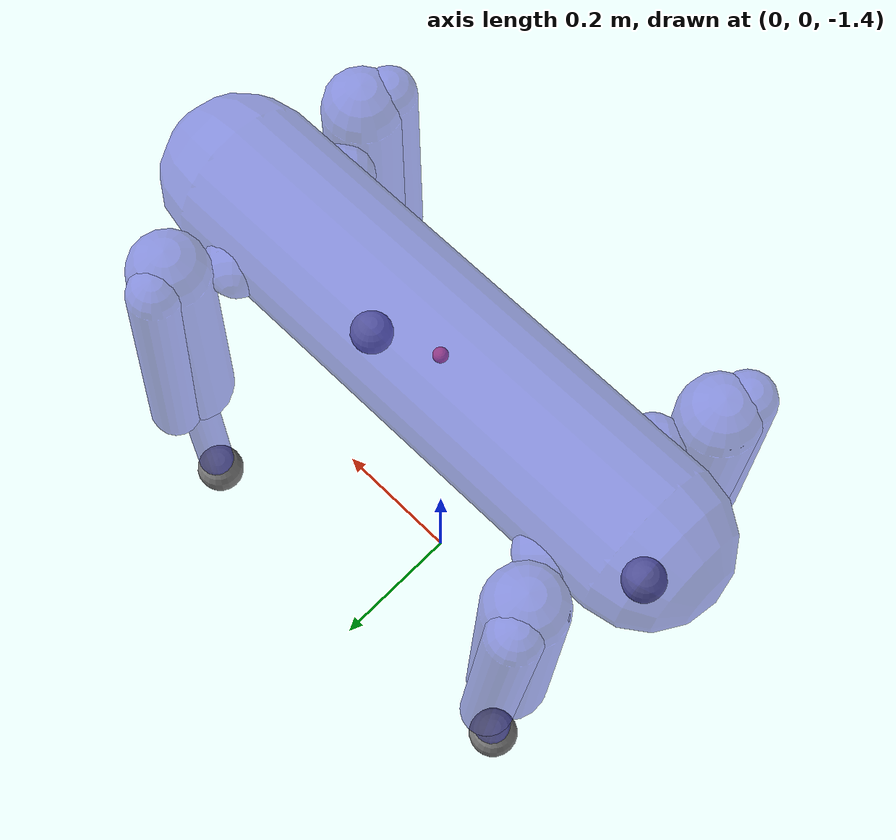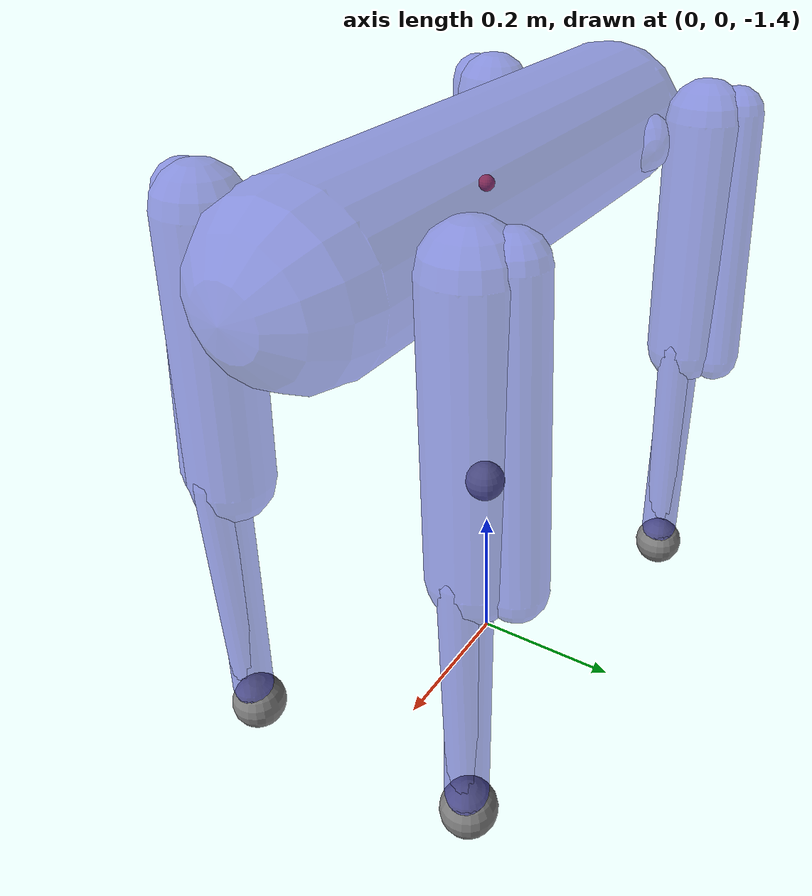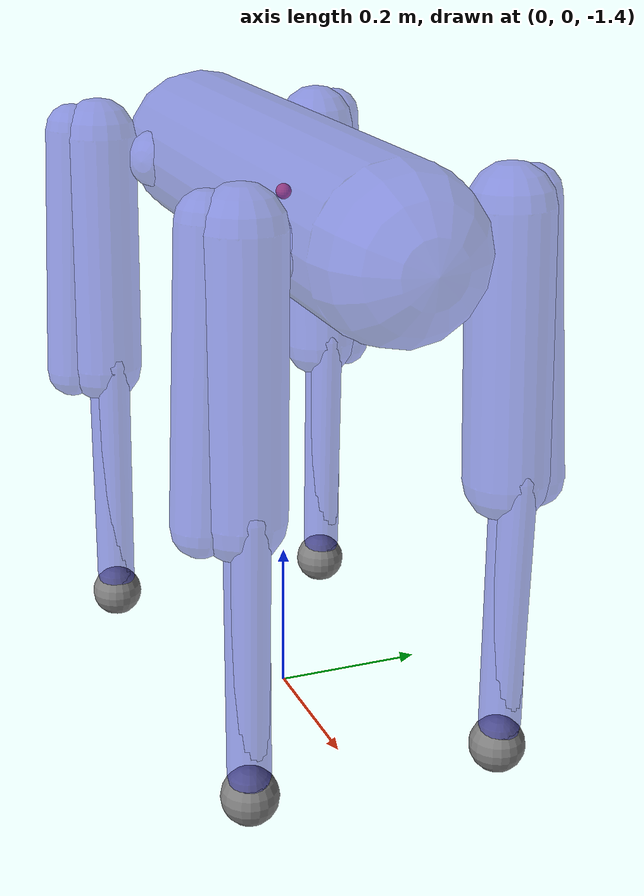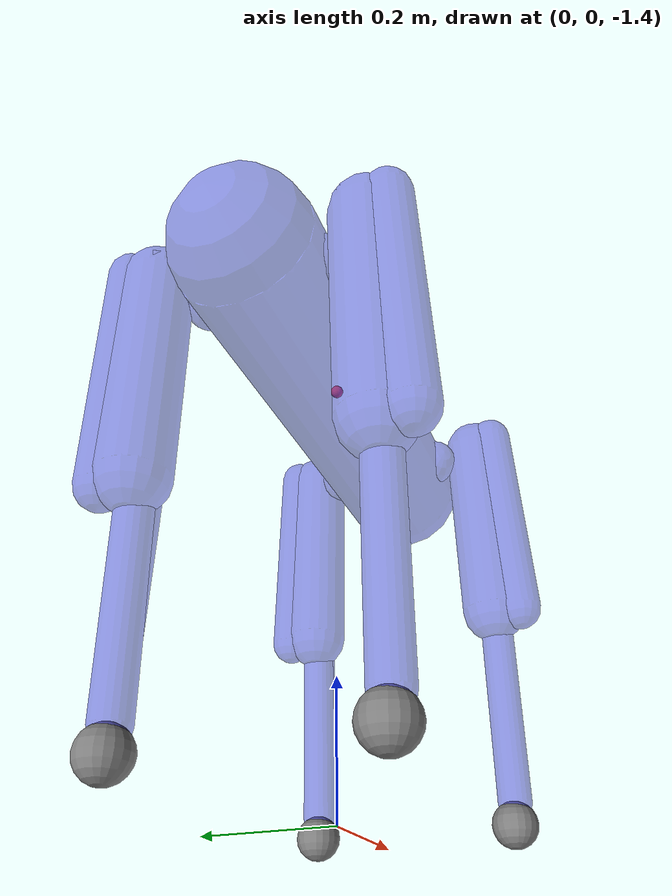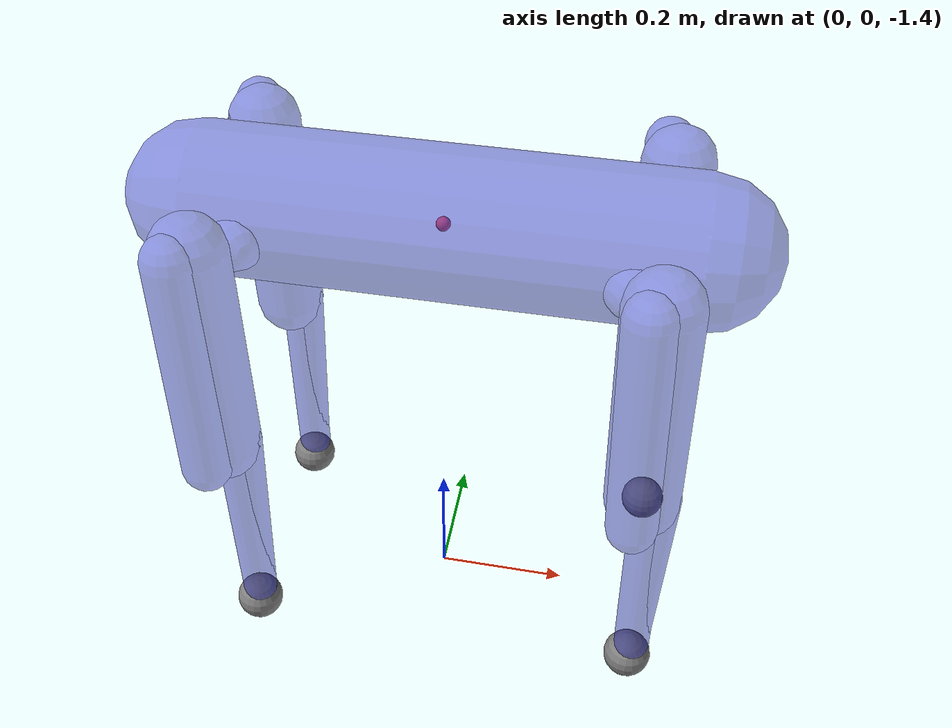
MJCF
<mujoco model="spot">
  <compiler angle="radian"/>
  <option gravity="0 0 0"/>
  <option integrator="implicitfast" cone="elliptic" impratio="100"/>
  <visual>
    <global ellipsoidinertia="true"/>
  </visual>
  <asset>
    <material name="BlackAbs" rgba="0.1 0.1 0.1 1"/>
    <material name="wrap" rgba="0.878431 0.666666 0.227450 1"/>
    <mesh file="meshes/body_0.obj" name="body_0"/>
    <mesh file="meshes/body_1.obj" name="body_1"/>
    <mesh file="meshes/front_left_hip.obj" name="front_left_hip"/>
    <mesh file="meshes/front_left_upper_leg_0.obj" name="front_left_upper_leg_0"/>
    <mesh file="meshes/front_left_upper_leg_1.obj" name="front_left_upper_leg_1"/>
    <mesh file="meshes/front_left_lower_leg.obj" name="front_left_lower_leg"/>
    <mesh file="meshes/front_right_hip.obj" name="front_right_hip"/>
    <mesh file="meshes/front_right_upper_leg_0.obj" name="front_right_upper_leg_0"/>
    <mesh file="meshes/front_right_upper_leg_1.obj" name="front_right_upper_leg_1"/>
    <mesh file="meshes/front_right_lower_leg.obj" name="front_right_lower_leg"/>
    <mesh file="meshes/rear_left_hip.obj" name="rear_left_hip"/>
    <mesh file="meshes/rear_left_upper_leg_0.obj" name="rear_left_upper_leg_0"/>
    <mesh file="meshes/rear_left_upper_leg_1.obj" name="rear_left_upper_leg_1"/>
    <mesh file="meshes/rear_left_lower_leg.obj" name="rear_left_lower_leg"/>
    <mesh file="meshes/rear_right_hip.obj" name="rear_right_hip"/>
    <mesh file="meshes/rear_right_upper_leg_0.obj" name="rear_right_upper_leg_0"/>
    <mesh file="meshes/rear_right_upper_leg_1.obj" name="rear_right_upper_leg_1"/>
    <mesh file="meshes/rear_right_lower_leg.obj" name="rear_right_lower_leg"/>
    <mesh file="meshes/body_collision.obj" name="body_collision"/>
    <mesh file="meshes/left_upper_leg_collision.obj" name="left_upper_leg_collision"/>
    <mesh file="meshes/left_lower_leg_collision.obj" name="left_lower_leg_collision"/>
    <mesh file="meshes/right_upper_leg_collision.obj" name="right_upper_leg_collision"/>
    <mesh file="meshes/right_lower_leg_collision.obj" name="right_lower_leg_collision"/>
  </asset>
  <default>
    <default class="spot">
      <geom solref="0.004 1"/>
      <joint actuatorfrcrange="-1000 1000"/>
      <position kp="500" kv="40" inheritrange="1"/>
      <motor ctrlrange="-70 70" ctrllimited="true"/>
    </default>
    <default class="spot_visual">
      <joint actuatorfrcrange="-1000 1000"/>
      <position kp="500" kv="40" inheritrange="1"/>
      <geom group="1" type="mesh" contype="0" conaffinity="0" solref="0.004 1"/>
    </default>
    <default class="spot_collision">
      <joint actuatorfrcrange="-1000 1000"/>
      <position kp="500" kv="40" inheritrange="1"/>
      <geom group="0" type="mesh" solref="0.004 1"/>
    </default>
    <default class="spot_foot">
      <joint actuatorfrcrange="-1000 1000"/>
      <position kp="500" kv="40" inheritrange="1"/>
      <geom type="sphere" size="0.036" pos="0 0 -0.3365" group="0" solimp="0.015 1 0.036" condim="6" friction="0.8 0.02 0.01"/>
    </default>
  </default>
  <worldbody>
    <body name="body" pos="0 0 -0.7">
      <freejoint/>
      <inertial pos="0.0063944 -9.81216e-05 0.000911379" mass="32.86" diaginertia="0.13144 0.13144 0.13144"/>
      <geom material="BlackAbs" class="spot_visual" type="capsule" pos="0.000733 0.000364 0.016213" quat="0.709969 0.008306 0.704184 0.000000" size="0.077576 0.351502" rgba="0.2 0.2 0.8 0.5"/>
      <geom material="wrap" class="spot_visual" type="capsule" pos="0.005900 -0.000423 0.003401" quat="0.705855 -0.002168 0.708353 0.000000" size="0.080535 0.355817" rgba="0.2 0.2 0.8 0.5"/>
      <geom class="spot_collision" type="capsule" pos="0.006294 0.000076 0.001634" quat="0.706189 0.000558 0.708024 0.000000" size="0.105976 0.339832" rgba="0.2 0.2 0.8 0.5"/>
      <body name="fixed_support" pos="0.292 0 0.188">
        <body name="support" pos="0.0 0.0 0">
          <site name="center" type="sphere" pos="0 0 0" size="0.01" group="1" rgba="0 0 0 0"/>
        </body>
      </body>
      <body name="FR_leg">
        <site name="FR_center" pos="0 0 0" size="0.01" rgba="1 0.3 0.3 1" group="2"/>
        <body name="fr_hip" pos="0.29785 -0.055 0">
          <inertial pos="-0.00537435 -0.0128418 -9.87523e-05" quat="1 1 -1 1" mass="1.68" diaginertia="0.00226544 0.00211474 0.00181296"/>
          <joint class="spot_collision" name="fr_hx_leg_joint" axis="1 0 0" range="-0.785398 0.785398"/>
          <geom material="BlackAbs" class="spot_visual" type="capsule" pos="-0.015059 -0.013743 0.000039" quat="0.687376 0.524482 -0.502426 0.000000" size="0.039623 0.032026" rgba="0.2 0.2 0.8 0.5"/>
          <body name="fr_uleg" pos="0 -0.1108 0">
            <inertial pos="0.00514237 0.00243237 -0.121009" mass="2.34" diaginertia="0.0275596 0.0273549 0.00284815"/>
            <joint class="spot_collision" name="fr_hy_leg_joint" axis="0 1 0" range="-0.898845 2.24363"/>
            <geom material="wrap" class="spot_visual" type="capsule" pos="-0.005295 -0.039641 -0.133997" quat="0.999548 -0.023628 -0.018563 0.000000" size="0.035876 0.174554" rgba="0.2 0.2 0.8 0.5"/>
            <geom material="BlackAbs" class="spot_visual" type="capsule" pos="0.004368 0.008507 -0.136748" quat="0.046216 0.033973 0.998354 0.000000" size="0.036178 0.172225" rgba="0.2 0.2 0.8 0.5"/>
            <geom class="spot_collision" type="capsule" pos="0.006611 0.000317 -0.135320" quat="0.999882 -0.007346 -0.013516 0.000000" size="0.052693 0.166584" rgba="0.2 0.2 0.8 0.5"/>
            <body name="fr_lleg" pos="0.025 0 -0.32">
              <inertial pos="0.00225794 4.6076e-05 -0.180082" quat="1 0 0 1" mass="0.35" diaginertia="0.00405032 0.00399902 0.00014934"/>
              <joint class="spot_collision" name="fr_kn_leg_joint" axis="0 1 0" range="-2.7929 -0.255648"/>
              <geom material="BlackAbs" class="spot_visual" type="capsule" pos="0.010626 -0.002150 -0.158843" quat="0.999871 0.001841 0.015985 0.000000" size="0.023220 0.189037" rgba="0.2 0.2 0.8 0.5"/>
              <geom class="spot_collision" type="capsule" pos="0.001141 -0.002020 -0.138314" quat="0.999960 -0.000838 -0.008910 0.000000" size="0.026769 0.165468" rgba="0.2 0.2 0.8 0.5"/>
              <geom name="FR" class="spot_foot"/>
            </body>
          </body>
        </body>
      </body>
      <body name="FL_leg">
        <site name="FL_center" pos="0 0 0" size="0.01" rgba="1 0.3 0.3 1" group="2"/>
        <body name="fl_hip" pos="0.29785 0.055 0">
          <inertial pos="-0.00537435 0.0128418 9.87523e-05" quat="1 1 -1 1" mass="1.68" diaginertia="0.00226544 0.00211474 0.00181296"/>
          <joint class="spot_collision" name="fl_hx_leg_joint" axis="1 0 0" range="-0.785398 0.785398"/>
          <geom material="BlackAbs" class="spot_visual" type="capsule" pos="-0.015024 0.013715 0.000169" quat="0.725918 -0.496256 -0.476207 0.000000" size="0.039553 0.032079" rgba="0.2 0.2 0.8 0.5"/>
          <body name="fl_uleg" pos="0 0.1108 0">
            <inertial pos="0.00514237 -0.00243237 -0.121009" mass="2.34" diaginertia="0.0275596 0.0273549 0.00284815"/>
            <joint class="spot_collision" name="fl_hy_leg_joint" axis="0 1 0" range="-0.898845 2.29511"/>
            <geom material="wrap" class="spot_visual" type="capsule" pos="-0.004996 0.039693 -0.134266" quat="0.999501 0.022588 -0.022093 0.000000" size="0.035241 0.175183" rgba="0.2 0.2 0.8 0.5"/>
            <geom material="BlackAbs" class="spot_visual" type="capsule" pos="0.004330 -0.008566 -0.136870" quat="0.999014 0.002950 -0.044302 0.000000" size="0.036499 0.172040" rgba="0.2 0.2 0.8 0.5"/>
            <geom class="spot_collision" type="capsule" pos="0.006651 -0.000409 -0.135414" quat="0.014920 -0.529823 0.847977 0.000000" size="0.052928 0.166342" rgba="0.2 0.2 0.8 0.5"/>
            <body name="fl_lleg" pos="0.025 0 -0.32">
              <inertial pos="0.00225794 4.6076e-05 -0.180082" quat="1 0 0 1" mass="0.35" diaginertia="0.00405032 0.00399902 0.00014934"/>
              <joint class="spot_collision" name="fl_kn_leg_joint" axis="0 1 0" range="-2.7929 -0.254402"/>
              <geom material="BlackAbs" class="spot_visual" type="capsule" pos="0.010513 0.001534 -0.158877" quat="0.999876 -0.001256 0.015708 0.000000" size="0.023232 0.189024" rgba="0.2 0.2 0.8 0.5"/>
              <geom class="spot_collision" type="capsule" pos="0.001284 0.001833 -0.138320" quat="0.009632 0.580608 0.814127 0.000000" size="0.026794 0.165533" rgba="0.2 0.2 0.8 0.5"/>
              <geom name="FL" class="spot_foot"/>
            </body>
          </body>
        </body>
      </body>
      <body name="RR_leg">
        <site name="RR_center" pos="0 0 0" size="0.01" rgba="1 0.3 0.3 1" group="2"/>
        <body name="hr_hip" pos="-0.29785 -0.055 0">
          <inertial pos="0.00537435 -0.0128418 9.87523e-05" quat="1 1 -1 1" mass="1.68" diaginertia="0.00226544 0.00211474 0.00181296"/>
          <joint class="spot_collision" name="hr_hx_leg_joint" axis="1 0 0" range="-0.785398 0.785398"/>
          <geom material="BlackAbs" class="spot_visual" type="capsule" pos="0.015234 -0.013890 0.000103" quat="0.717396 0.497165 0.488027 0.000000" size="0.039683 0.032228" rgba="0.2 0.2 0.8 0.5"/>
          <body name="hr_uleg" pos="0 -0.1108 0">
            <inertial pos="0.00514237 0.00243237 -0.121009" mass="2.34" diaginertia="0.0275596 0.0273549 0.00284815"/>
            <joint class="spot_collision" name="hr_hy_leg_joint" axis="0 1 0" range="-0.898845 2.29511"/>
            <geom material="wrap" class="spot_visual" type="capsule" pos="-0.005446 -0.039342 -0.133973" quat="0.999690 -0.022156 -0.011361 0.000000" size="0.036472 0.173821" rgba="0.2 0.2 0.8 0.5"/>
            <geom material="BlackAbs" class="spot_visual" type="capsule" pos="0.004368 0.008807 -0.136733" quat="0.998853 -0.000150 -0.047889 0.000000" size="0.036131 0.172372" rgba="0.2 0.2 0.8 0.5"/>
            <geom class="spot_collision" type="capsule" pos="0.006611 0.000317 -0.135320" quat="0.999882 -0.007346 -0.013516 0.000000" size="0.052693 0.166584" rgba="0.2 0.2 0.8 0.5"/>
            <body name="hr_lleg" pos="0.025 0 -0.32">
              <inertial pos="0.00225794 4.6076e-05 -0.180082" quat="1 0 0 1" mass="0.35" diaginertia="0.00405032 0.00399902 0.00014934"/>
              <joint class="spot_collision" name="hr_kn_leg_joint" axis="0 1 0" range="-2.7929 -0.248282"/>
              <geom material="BlackAbs" class="spot_visual" type="capsule" pos="0.010240 0.001630 -0.158844" quat="0.999869 0.000591 0.016204 0.000000" size="0.023231 0.189032" rgba="0.2 0.2 0.8 0.5"/>
              <geom class="spot_collision" type="capsule" pos="0.001141 -0.002020 -0.138314" quat="0.999960 -0.000838 -0.008910 0.000000" size="0.026769 0.165468" rgba="0.2 0.2 0.8 0.5"/>
              <geom name="RR" class="spot_foot"/>
            </body>
          </body>
        </body>
      </body>
      <body name="RL_leg">
        <site name="RL_center" pos="0 0 0" size="0.01" rgba="1 0.3 0.3 1" group="2"/>
        <body name="hl_hip" pos="-0.29785 0.055 0">
          <inertial pos="0.00537435 0.0128418 -9.87523e-05" quat="1 1 -1 1" mass="1.68" diaginertia="0.00226544 0.00211474 0.00181296"/>
          <joint class="spot_collision" name="hl_hx_leg_joint" axis="1 0 0" range="-0.785398 0.785398"/>
          <geom material="BlackAbs" class="spot_visual" type="capsule" pos="0.015225 0.013880 -0.000043" quat="0.687878 -0.517862 0.508569 0.000000" size="0.039694 0.032250" rgba="0.2 0.2 0.8 0.5"/>
          <body name="hl_uleg" pos="0 0.1108 0">
            <inertial pos="0.00514237 -0.00243237 -0.121009" mass="2.34" diaginertia="0.0275596 0.0273549 0.00284815"/>
            <joint class="spot_collision" name="hl_hy_leg_joint" axis="0 1 0" range="-0.898845 2.29511"/>
            <geom material="wrap" class="spot_visual" type="capsule" pos="-0.005031 0.039433 -0.134595" quat="0.999479 0.020150 -0.025210 0.000000" size="0.035155 0.175239" rgba="0.2 0.2 0.8 0.5"/>
            <geom material="BlackAbs" class="spot_visual" type="capsule" pos="0.004318 -0.008732 -0.136998" quat="0.998922 0.002415 -0.046356 0.000000" size="0.036439 0.172077" rgba="0.2 0.2 0.8 0.5"/>
            <geom class="spot_collision" type="capsule" pos="0.006651 -0.000409 -0.135414" quat="0.014920 -0.529823 0.847977 0.000000" size="0.052928 0.166342" rgba="0.2 0.2 0.8 0.5"/>
            <body name="hl_lleg" pos="0.025 0 -0.32">
              <inertial pos="0.00225794 4.6076e-05 -0.180082" quat="1 0 0 1" mass="0.35" diaginertia="0.00405032 0.00399902 0.00014934"/>
              <joint class="spot_collision" name="hl_kn_leg_joint" axis="0 1 0" range="-2.7929 -0.247067"/>
              <geom material="BlackAbs" class="spot_visual" type="capsule" pos="0.010240 0.001630 -0.158844" quat="0.999869 0.000591 0.016204 0.000000" size="0.023231 0.189032" rgba="0.2 0.2 0.8 0.5"/>
              <geom class="spot_collision" type="capsule" pos="0.001284 0.001833 -0.138320" quat="0.009632 0.580608 0.814127 0.000000" size="0.026794 0.165533" rgba="0.2 0.2 0.8 0.5"/>
              <geom name="RL" class="spot_foot"/>
            </body>
          </body>
        </body>
      </body>
    </body>
  </worldbody>
  <contact>
    <exclude body1="body" body2="fl_uleg"/>
    <exclude body1="body" body2="fr_uleg"/>
    <exclude body1="body" body2="hl_uleg"/>
    <exclude body1="body" body2="hr_uleg"/>
  </contact>
  <actuator>
    <motor class="spot" name="fr_hx_leg" joint="fr_hx_leg_joint"/>
    <motor class="spot" name="fr_hy_leg" joint="fr_hy_leg_joint"/>
    <motor class="spot" name="fr_kn_leg" joint="fr_kn_leg_joint"/>
    <motor class="spot" name="fl_hx_leg" joint="fl_hx_leg_joint"/>
    <motor class="spot" name="fl_hy_leg" joint="fl_hy_leg_joint"/>
    <motor class="spot" name="fl_kn_leg" joint="fl_kn_leg_joint"/>
    <motor class="spot" name="hr_hx_leg" joint="hr_hx_leg_joint"/>
    <motor class="spot" name="hr_hy_leg" joint="hr_hy_leg_joint"/>
    <motor class="spot" name="hr_kn_leg" joint="hr_kn_leg_joint"/>
    <motor class="spot" name="hl_hx_leg" joint="hl_hx_leg_joint"/>
    <motor class="spot" name="hl_hy_leg" joint="hl_hy_leg_joint"/>
    <motor class="spot" name="hl_kn_leg" joint="hl_kn_leg_joint"/>
  </actuator>
</mujoco>
